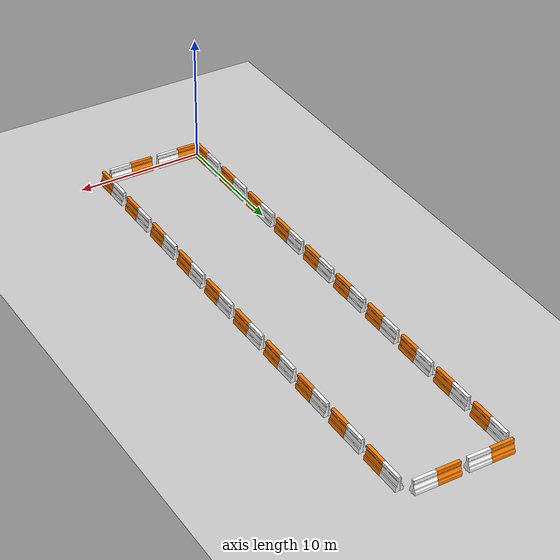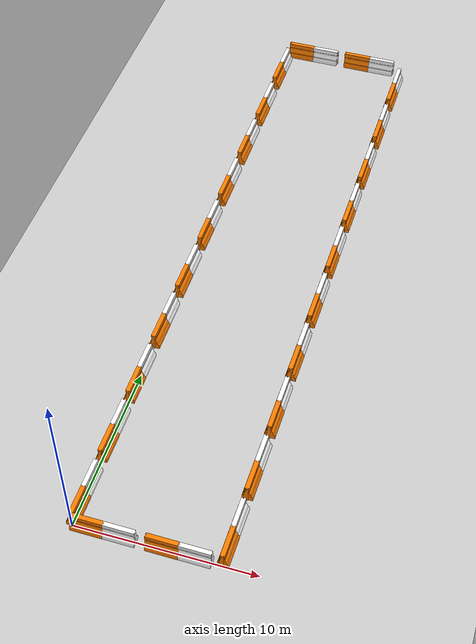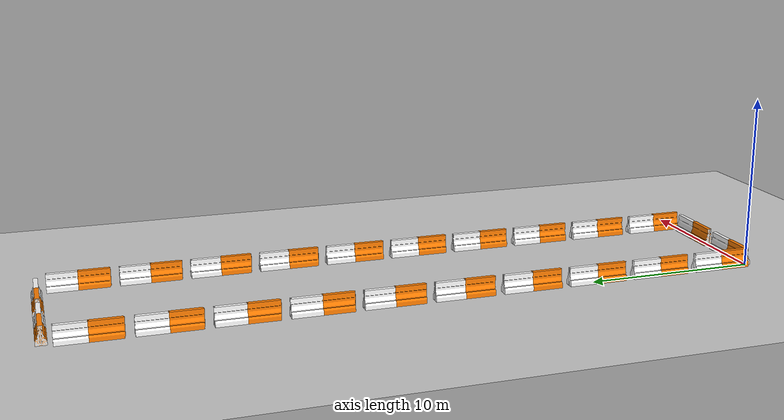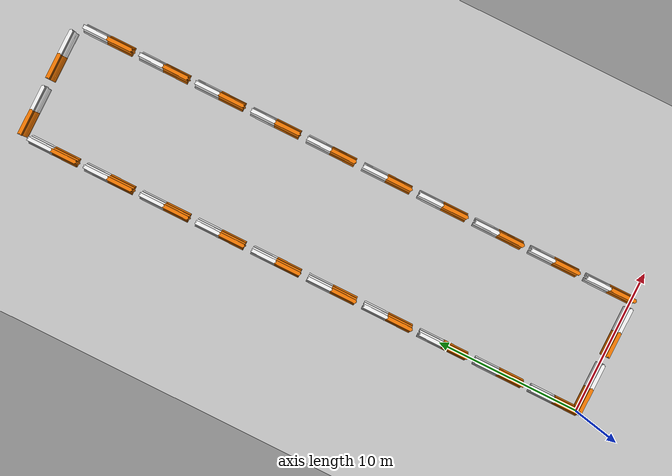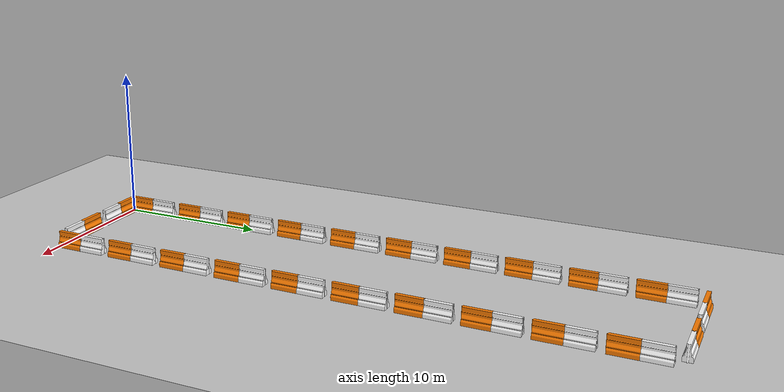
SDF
<sdf version="1.7">
 <world name="default">
  <model name="ground_plane">
   <static>1</static>
   <link name="link">
    <collision name="collision">
     <geometry><plane><normal>0 0 1</normal><size>100 100</size></plane></geometry>
     <surface>
      <contact><collide_bitmask>65535</collide_bitmask></contact>
      <friction><ode><mu>100</mu><mu2>50</mu2></ode></friction>
     </surface>
    </collision>
    <visual name="visual">
     <cast_shadows>0</cast_shadows>
     <geometry><plane><normal>0 0 1</normal><size>100 100</size></plane></geometry>
     <material>
      <script><uri>file://media/materials/scripts/gazebo.material</uri><name>Gazebo/Grey</name></script>
     </material>
    </visual>
   </link>
  </model>
  <model name="object_0">
   <static>1</static>
   <link name="link">
    <visual name="visual">
     <geometry>
      <mesh><uri>model://drc_practice_orange_jersey_barrier/meshes/jersey_barrier.dae</uri></mesh>
     </geometry>
    </visual>
    <collision name="collision">
     <geometry>
      <mesh><uri>model://drc_practice_orange_jersey_barrier/meshes/jersey_barrier.dae</uri></mesh>
     </geometry>
    </collision>
   </link>
   <pose>0 0.87 0 0 -0 0</pose>
  </model>
  <model name="object_1">
   <static>1</static>
   <link name="link">
    <visual name="visual">
     <geometry>
      <mesh><uri>model://drc_practice_white_jersey_barrier/meshes/jersey_barrier.dae</uri></mesh>
     </geometry>
    </visual>
    <collision name="collision">
     <geometry>
      <mesh><uri>model://drc_practice_white_jersey_barrier/meshes/jersey_barrier.dae</uri></mesh>
     </geometry>
    </collision>
   </link>
   <pose>0 2.61 0 0 -0 0</pose>
  </model>
  <model name="object_3">
   <static>1</static>
   <link name="link">
    <visual name="visual">
     <geometry>
      <mesh><uri>model://drc_practice_orange_jersey_barrier/meshes/jersey_barrier.dae</uri></mesh>
     </geometry>
    </visual>
    <collision name="collision">
     <geometry>
      <mesh><uri>model://drc_practice_orange_jersey_barrier/meshes/jersey_barrier.dae</uri></mesh>
     </geometry>
    </collision>
   </link>
   <pose>0 4.91 0 0 -0 0</pose>
  </model>
  <model name="object_4">
   <static>1</static>
   <link name="link">
    <visual name="visual">
     <geometry>
      <mesh><uri>model://drc_practice_white_jersey_barrier/meshes/jersey_barrier.dae</uri></mesh>
     </geometry>
    </visual>
    <collision name="collision">
     <geometry>
      <mesh><uri>model://drc_practice_white_jersey_barrier/meshes/jersey_barrier.dae</uri></mesh>
     </geometry>
    </collision>
   </link>
   <pose>0 6.65 0 0 -0 0</pose>
  </model>
  <model name="object_6">
   <static>1</static>
   <link name="link">
    <visual name="visual">
     <geometry>
      <mesh><uri>model://drc_practice_orange_jersey_barrier/meshes/jersey_barrier.dae</uri></mesh>
     </geometry>
    </visual>
    <collision name="collision">
     <geometry>
      <mesh><uri>model://drc_practice_orange_jersey_barrier/meshes/jersey_barrier.dae</uri></mesh>
     </geometry>
    </collision>
   </link>
   <pose>0 8.95 0 0 -0 0</pose>
  </model>
  <model name="object_7">
   <static>1</static>
   <link name="link">
    <visual name="visual">
     <geometry>
      <mesh><uri>model://drc_practice_white_jersey_barrier/meshes/jersey_barrier.dae</uri></mesh>
     </geometry>
    </visual>
    <collision name="collision">
     <geometry>
      <mesh><uri>model://drc_practice_white_jersey_barrier/meshes/jersey_barrier.dae</uri></mesh>
     </geometry>
    </collision>
   </link>
   <pose>0 10.69 0 0 -0 0</pose>
  </model>
  <model name="object_9">
   <static>1</static>
   <link name="link">
    <visual name="visual">
     <geometry>
      <mesh><uri>model://drc_practice_orange_jersey_barrier/meshes/jersey_barrier.dae</uri></mesh>
     </geometry>
    </visual>
    <collision name="collision">
     <geometry>
      <mesh><uri>model://drc_practice_orange_jersey_barrier/meshes/jersey_barrier.dae</uri></mesh>
     </geometry>
    </collision>
   </link>
   <pose>0 12.99 0 0 -0 0</pose>
  </model>
  <model name="object_10">
   <static>1</static>
   <link name="link">
    <visual name="visual">
     <geometry>
      <mesh><uri>model://drc_practice_white_jersey_barrier/meshes/jersey_barrier.dae</uri></mesh>
     </geometry>
    </visual>
    <collision name="collision">
     <geometry>
      <mesh><uri>model://drc_practice_white_jersey_barrier/meshes/jersey_barrier.dae</uri></mesh>
     </geometry>
    </collision>
   </link>
   <pose>0 14.73 0 0 -0 0</pose>
  </model>
  <model name="object_12">
   <static>1</static>
   <link name="link">
    <visual name="visual">
     <geometry>
      <mesh><uri>model://drc_practice_orange_jersey_barrier/meshes/jersey_barrier.dae</uri></mesh>
     </geometry>
    </visual>
    <collision name="collision">
     <geometry>
      <mesh><uri>model://drc_practice_orange_jersey_barrier/meshes/jersey_barrier.dae</uri></mesh>
     </geometry>
    </collision>
   </link>
   <pose>0 17.03 0 0 -0 0</pose>
  </model>
  <model name="object_13">
   <static>1</static>
   <link name="link">
    <visual name="visual">
     <geometry>
      <mesh><uri>model://drc_practice_white_jersey_barrier/meshes/jersey_barrier.dae</uri></mesh>
     </geometry>
    </visual>
    <collision name="collision">
     <geometry>
      <mesh><uri>model://drc_practice_white_jersey_barrier/meshes/jersey_barrier.dae</uri></mesh>
     </geometry>
    </collision>
   </link>
   <pose>0 18.77 0 0 -0 0</pose>
  </model>
  <model name="object_15">
   <static>1</static>
   <link name="link">
    <visual name="visual">
     <geometry>
      <mesh><uri>model://drc_practice_orange_jersey_barrier/meshes/jersey_barrier.dae</uri></mesh>
     </geometry>
    </visual>
    <collision name="collision">
     <geometry>
      <mesh><uri>model://drc_practice_orange_jersey_barrier/meshes/jersey_barrier.dae</uri></mesh>
     </geometry>
    </collision>
   </link>
   <pose>0 21.07 0 0 -0 0</pose>
  </model>
  <model name="object_16">
   <static>1</static>
   <link name="link">
    <visual name="visual">
     <geometry>
      <mesh><uri>model://drc_practice_white_jersey_barrier/meshes/jersey_barrier.dae</uri></mesh>
     </geometry>
    </visual>
    <collision name="collision">
     <geometry>
      <mesh><uri>model://drc_practice_white_jersey_barrier/meshes/jersey_barrier.dae</uri></mesh>
     </geometry>
    </collision>
   </link>
   <pose>0 22.81 0 0 -0 0</pose>
  </model>
  <model name="object_18">
   <static>1</static>
   <link name="link">
    <visual name="visual">
     <geometry>
      <mesh><uri>model://drc_practice_orange_jersey_barrier/meshes/jersey_barrier.dae</uri></mesh>
     </geometry>
    </visual>
    <collision name="collision">
     <geometry>
      <mesh><uri>model://drc_practice_orange_jersey_barrier/meshes/jersey_barrier.dae</uri></mesh>
     </geometry>
    </collision>
   </link>
   <pose>0 25.11 0 0 -0 0</pose>
  </model>
  <model name="object_19">
   <static>1</static>
   <link name="link">
    <visual name="visual">
     <geometry>
      <mesh><uri>model://drc_practice_white_jersey_barrier/meshes/jersey_barrier.dae</uri></mesh>
     </geometry>
    </visual>
    <collision name="collision">
     <geometry>
      <mesh><uri>model://drc_practice_white_jersey_barrier/meshes/jersey_barrier.dae</uri></mesh>
     </geometry>
    </collision>
   </link>
   <pose>0 26.85 0 0 -0 0</pose>
  </model>
  <model name="object_21">
   <static>1</static>
   <link name="link">
    <visual name="visual">
     <geometry>
      <mesh><uri>model://drc_practice_orange_jersey_barrier/meshes/jersey_barrier.dae</uri></mesh>
     </geometry>
    </visual>
    <collision name="collision">
     <geometry>
      <mesh><uri>model://drc_practice_orange_jersey_barrier/meshes/jersey_barrier.dae</uri></mesh>
     </geometry>
    </collision>
   </link>
   <pose>0 29.15 0 0 -0 0</pose>
  </model>
  <model name="object_22">
   <static>1</static>
   <link name="link">
    <visual name="visual">
     <geometry>
      <mesh><uri>model://drc_practice_white_jersey_barrier/meshes/jersey_barrier.dae</uri></mesh>
     </geometry>
    </visual>
    <collision name="collision">
     <geometry>
      <mesh><uri>model://drc_practice_white_jersey_barrier/meshes/jersey_barrier.dae</uri></mesh>
     </geometry>
    </collision>
   </link>
   <pose>0 30.89 0 0 -0 0</pose>
  </model>
  <model name="object_24">
   <static>1</static>
   <link name="link">
    <visual name="visual">
     <geometry>
      <mesh><uri>model://drc_practice_orange_jersey_barrier/meshes/jersey_barrier.dae</uri></mesh>
     </geometry>
    </visual>
    <collision name="collision">
     <geometry>
      <mesh><uri>model://drc_practice_orange_jersey_barrier/meshes/jersey_barrier.dae</uri></mesh>
     </geometry>
    </collision>
   </link>
   <pose>0 33.19 0 0 -0 0</pose>
  </model>
  <model name="object_25">
   <static>1</static>
   <link name="link">
    <visual name="visual">
     <geometry>
      <mesh><uri>model://drc_practice_white_jersey_barrier/meshes/jersey_barrier.dae</uri></mesh>
     </geometry>
    </visual>
    <collision name="collision">
     <geometry>
      <mesh><uri>model://drc_practice_white_jersey_barrier/meshes/jersey_barrier.dae</uri></mesh>
     </geometry>
    </collision>
   </link>
   <pose>0 34.93 0 0 -0 0</pose>
  </model>
  <model name="object_27">
   <static>1</static>
   <link name="link">
    <visual name="visual">
     <geometry>
      <mesh><uri>model://drc_practice_orange_jersey_barrier/meshes/jersey_barrier.dae</uri></mesh>
     </geometry>
    </visual>
    <collision name="collision">
     <geometry>
      <mesh><uri>model://drc_practice_orange_jersey_barrier/meshes/jersey_barrier.dae</uri></mesh>
     </geometry>
    </collision>
   </link>
   <pose>0 37.23 0 0 -0 0</pose>
  </model>
  <model name="object_28">
   <static>1</static>
   <link name="link">
    <visual name="visual">
     <geometry>
      <mesh><uri>model://drc_practice_white_jersey_barrier/meshes/jersey_barrier.dae</uri></mesh>
     </geometry>
    </visual>
    <collision name="collision">
     <geometry>
      <mesh><uri>model://drc_practice_white_jersey_barrier/meshes/jersey_barrier.dae</uri></mesh>
     </geometry>
    </collision>
   </link>
   <pose>0 38.97 0 0 -0 0</pose>
  </model>
  <model name="object_30">
   <static>1</static>
   <link name="link">
    <visual name="visual">
     <geometry>
      <mesh><uri>model://drc_practice_orange_jersey_barrier/meshes/jersey_barrier.dae</uri></mesh>
     </geometry>
    </visual>
    <collision name="collision">
     <geometry>
      <mesh><uri>model://drc_practice_orange_jersey_barrier/meshes/jersey_barrier.dae</uri></mesh>
     </geometry>
    </collision>
   </link>
   <pose>8.08 0.87 0 0 -0 0</pose>
  </model>
  <model name="object_31">
   <static>1</static>
   <link name="link">
    <visual name="visual">
     <geometry>
      <mesh><uri>model://drc_practice_white_jersey_barrier/meshes/jersey_barrier.dae</uri></mesh>
     </geometry>
    </visual>
    <collision name="collision">
     <geometry>
      <mesh><uri>model://drc_practice_white_jersey_barrier/meshes/jersey_barrier.dae</uri></mesh>
     </geometry>
    </collision>
   </link>
   <pose>8.08 2.61 0 0 -0 0</pose>
  </model>
  <model name="object_33">
   <static>1</static>
   <link name="link">
    <visual name="visual">
     <geometry>
      <mesh><uri>model://drc_practice_orange_jersey_barrier/meshes/jersey_barrier.dae</uri></mesh>
     </geometry>
    </visual>
    <collision name="collision">
     <geometry>
      <mesh><uri>model://drc_practice_orange_jersey_barrier/meshes/jersey_barrier.dae</uri></mesh>
     </geometry>
    </collision>
   </link>
   <pose>8.08 4.91 0 0 -0 0</pose>
  </model>
  <model name="object_34">
   <static>1</static>
   <link name="link">
    <visual name="visual">
     <geometry>
      <mesh><uri>model://drc_practice_white_jersey_barrier/meshes/jersey_barrier.dae</uri></mesh>
     </geometry>
    </visual>
    <collision name="collision">
     <geometry>
      <mesh><uri>model://drc_practice_white_jersey_barrier/meshes/jersey_barrier.dae</uri></mesh>
     </geometry>
    </collision>
   </link>
   <pose>8.08 6.65 0 0 -0 0</pose>
  </model>
  <model name="object_36">
   <static>1</static>
   <link name="link">
    <visual name="visual">
     <geometry>
      <mesh><uri>model://drc_practice_orange_jersey_barrier/meshes/jersey_barrier.dae</uri></mesh>
     </geometry>
    </visual>
    <collision name="collision">
     <geometry>
      <mesh><uri>model://drc_practice_orange_jersey_barrier/meshes/jersey_barrier.dae</uri></mesh>
     </geometry>
    </collision>
   </link>
   <pose>8.08 8.95 0 0 -0 0</pose>
  </model>
  <model name="object_37">
   <static>1</static>
   <link name="link">
    <visual name="visual">
     <geometry>
      <mesh><uri>model://drc_practice_white_jersey_barrier/meshes/jersey_barrier.dae</uri></mesh>
     </geometry>
    </visual>
    <collision name="collision">
     <geometry>
      <mesh><uri>model://drc_practice_white_jersey_barrier/meshes/jersey_barrier.dae</uri></mesh>
     </geometry>
    </collision>
   </link>
   <pose>8.08 10.69 0 0 -0 0</pose>
  </model>
  <model name="object_39">
   <static>1</static>
   <link name="link">
    <visual name="visual">
     <geometry>
      <mesh><uri>model://drc_practice_orange_jersey_barrier/meshes/jersey_barrier.dae</uri></mesh>
     </geometry>
    </visual>
    <collision name="collision">
     <geometry>
      <mesh><uri>model://drc_practice_orange_jersey_barrier/meshes/jersey_barrier.dae</uri></mesh>
     </geometry>
    </collision>
   </link>
   <pose>8.08 12.99 0 0 -0 0</pose>
  </model>
  <model name="object_40">
   <static>1</static>
   <link name="link">
    <visual name="visual">
     <geometry>
      <mesh><uri>model://drc_practice_white_jersey_barrier/meshes/jersey_barrier.dae</uri></mesh>
     </geometry>
    </visual>
    <collision name="collision">
     <geometry>
      <mesh><uri>model://drc_practice_white_jersey_barrier/meshes/jersey_barrier.dae</uri></mesh>
     </geometry>
    </collision>
   </link>
   <pose>8.08 14.73 0 0 -0 0</pose>
  </model>
  <model name="object_42">
   <static>1</static>
   <link name="link">
    <visual name="visual">
     <geometry>
      <mesh><uri>model://drc_practice_orange_jersey_barrier/meshes/jersey_barrier.dae</uri></mesh>
     </geometry>
    </visual>
    <collision name="collision">
     <geometry>
      <mesh><uri>model://drc_practice_orange_jersey_barrier/meshes/jersey_barrier.dae</uri></mesh>
     </geometry>
    </collision>
   </link>
   <pose>8.08 17.03 0 0 -0 0</pose>
  </model>
  <model name="object_43">
   <static>1</static>
   <link name="link">
    <visual name="visual">
     <geometry>
      <mesh><uri>model://drc_practice_white_jersey_barrier/meshes/jersey_barrier.dae</uri></mesh>
     </geometry>
    </visual>
    <collision name="collision">
     <geometry>
      <mesh><uri>model://drc_practice_white_jersey_barrier/meshes/jersey_barrier.dae</uri></mesh>
     </geometry>
    </collision>
   </link>
   <pose>8.08 18.77 0 0 -0 0</pose>
  </model>
  <model name="object_45">
   <static>1</static>
   <link name="link">
    <visual name="visual">
     <geometry>
      <mesh><uri>model://drc_practice_orange_jersey_barrier/meshes/jersey_barrier.dae</uri></mesh>
     </geometry>
    </visual>
    <collision name="collision">
     <geometry>
      <mesh><uri>model://drc_practice_orange_jersey_barrier/meshes/jersey_barrier.dae</uri></mesh>
     </geometry>
    </collision>
   </link>
   <pose>8.08 21.07 0 0 -0 0</pose>
  </model>
  <model name="object_46">
   <static>1</static>
   <link name="link">
    <visual name="visual">
     <geometry>
      <mesh><uri>model://drc_practice_white_jersey_barrier/meshes/jersey_barrier.dae</uri></mesh>
     </geometry>
    </visual>
    <collision name="collision">
     <geometry>
      <mesh><uri>model://drc_practice_white_jersey_barrier/meshes/jersey_barrier.dae</uri></mesh>
     </geometry>
    </collision>
   </link>
   <pose>8.08 22.81 0 0 -0 0</pose>
  </model>
  <model name="object_48">
   <static>1</static>
   <link name="link">
    <visual name="visual">
     <geometry>
      <mesh><uri>model://drc_practice_orange_jersey_barrier/meshes/jersey_barrier.dae</uri></mesh>
     </geometry>
    </visual>
    <collision name="collision">
     <geometry>
      <mesh><uri>model://drc_practice_orange_jersey_barrier/meshes/jersey_barrier.dae</uri></mesh>
     </geometry>
    </collision>
   </link>
   <pose>8.08 25.11 0 0 -0 0</pose>
  </model>
  <model name="object_49">
   <static>1</static>
   <link name="link">
    <visual name="visual">
     <geometry>
      <mesh><uri>model://drc_practice_white_jersey_barrier/meshes/jersey_barrier.dae</uri></mesh>
     </geometry>
    </visual>
    <collision name="collision">
     <geometry>
      <mesh><uri>model://drc_practice_white_jersey_barrier/meshes/jersey_barrier.dae</uri></mesh>
     </geometry>
    </collision>
   </link>
   <pose>8.08 26.85 0 0 -0 0</pose>
  </model>
  <model name="object_51">
   <static>1</static>
   <link name="link">
    <visual name="visual">
     <geometry>
      <mesh><uri>model://drc_practice_orange_jersey_barrier/meshes/jersey_barrier.dae</uri></mesh>
     </geometry>
    </visual>
    <collision name="collision">
     <geometry>
      <mesh><uri>model://drc_practice_orange_jersey_barrier/meshes/jersey_barrier.dae</uri></mesh>
     </geometry>
    </collision>
   </link>
   <pose>8.08 29.15 0 0 -0 0</pose>
  </model>
  <model name="object_52">
   <static>1</static>
   <link name="link">
    <visual name="visual">
     <geometry>
      <mesh><uri>model://drc_practice_white_jersey_barrier/meshes/jersey_barrier.dae</uri></mesh>
     </geometry>
    </visual>
    <collision name="collision">
     <geometry>
      <mesh><uri>model://drc_practice_white_jersey_barrier/meshes/jersey_barrier.dae</uri></mesh>
     </geometry>
    </collision>
   </link>
   <pose>8.08 30.89 0 0 -0 0</pose>
  </model>
  <model name="object_54">
   <static>1</static>
   <link name="link">
    <visual name="visual">
     <geometry>
      <mesh><uri>model://drc_practice_orange_jersey_barrier/meshes/jersey_barrier.dae</uri></mesh>
     </geometry>
    </visual>
    <collision name="collision">
     <geometry>
      <mesh><uri>model://drc_practice_orange_jersey_barrier/meshes/jersey_barrier.dae</uri></mesh>
     </geometry>
    </collision>
   </link>
   <pose>8.08 33.19 0 0 -0 0</pose>
  </model>
  <model name="object_55">
   <static>1</static>
   <link name="link">
    <visual name="visual">
     <geometry>
      <mesh><uri>model://drc_practice_white_jersey_barrier/meshes/jersey_barrier.dae</uri></mesh>
     </geometry>
    </visual>
    <collision name="collision">
     <geometry>
      <mesh><uri>model://drc_practice_white_jersey_barrier/meshes/jersey_barrier.dae</uri></mesh>
     </geometry>
    </collision>
   </link>
   <pose>8.08 34.93 0 0 -0 0</pose>
  </model>
  <model name="object_57">
   <static>1</static>
   <link name="link">
    <visual name="visual">
     <geometry>
      <mesh><uri>model://drc_practice_orange_jersey_barrier/meshes/jersey_barrier.dae</uri></mesh>
     </geometry>
    </visual>
    <collision name="collision">
     <geometry>
      <mesh><uri>model://drc_practice_orange_jersey_barrier/meshes/jersey_barrier.dae</uri></mesh>
     </geometry>
    </collision>
   </link>
   <pose>8.08 37.23 0 0 -0 0</pose>
  </model>
  <model name="object_58">
   <static>1</static>
   <link name="link">
    <visual name="visual">
     <geometry>
      <mesh><uri>model://drc_practice_white_jersey_barrier/meshes/jersey_barrier.dae</uri></mesh>
     </geometry>
    </visual>
    <collision name="collision">
     <geometry>
      <mesh><uri>model://drc_practice_white_jersey_barrier/meshes/jersey_barrier.dae</uri></mesh>
     </geometry>
    </collision>
   </link>
   <pose>8.08 38.97 0 0 -0 0</pose>
  </model>
  <model name="object_60">
   <static>1</static>
   <link name="link">
    <visual name="visual">
     <geometry>
      <mesh><uri>model://drc_practice_orange_jersey_barrier/meshes/jersey_barrier.dae</uri></mesh>
     </geometry>
    </visual>
    <collision name="collision">
     <geometry>
      <mesh><uri>model://drc_practice_orange_jersey_barrier/meshes/jersey_barrier.dae</uri></mesh>
     </geometry>
    </collision>
   </link>
   <pose>0.87 0 0 0 -0 1.5708</pose>
  </model>
  <model name="object_61">
   <static>1</static>
   <link name="link">
    <visual name="visual">
     <geometry>
      <mesh><uri>model://drc_practice_white_jersey_barrier/meshes/jersey_barrier.dae</uri></mesh>
     </geometry>
    </visual>
    <collision name="collision">
     <geometry>
      <mesh><uri>model://drc_practice_white_jersey_barrier/meshes/jersey_barrier.dae</uri></mesh>
     </geometry>
    </collision>
   </link>
   <pose>2.61 0 0 0 -0 1.5708</pose>
  </model>
  <model name="object_63">
   <static>1</static>
   <link name="link">
    <visual name="visual">
     <geometry>
      <mesh><uri>model://drc_practice_orange_jersey_barrier/meshes/jersey_barrier.dae</uri></mesh>
     </geometry>
    </visual>
    <collision name="collision">
     <geometry>
      <mesh><uri>model://drc_practice_orange_jersey_barrier/meshes/jersey_barrier.dae</uri></mesh>
     </geometry>
    </collision>
   </link>
   <pose>4.91 0 0 0 -0 1.5708</pose>
  </model>
  <model name="object_64">
   <static>1</static>
   <link name="link">
    <visual name="visual">
     <geometry>
      <mesh><uri>model://drc_practice_white_jersey_barrier/meshes/jersey_barrier.dae</uri></mesh>
     </geometry>
    </visual>
    <collision name="collision">
     <geometry>
      <mesh><uri>model://drc_practice_white_jersey_barrier/meshes/jersey_barrier.dae</uri></mesh>
     </geometry>
    </collision>
   </link>
   <pose>6.65 0 0 0 -0 1.5708</pose>
  </model>
  <model name="object_66">
   <static>1</static>
   <link name="link">
    <visual name="visual">
     <geometry>
      <mesh><uri>model://drc_practice_orange_jersey_barrier/meshes/jersey_barrier.dae</uri></mesh>
     </geometry>
    </visual>
    <collision name="collision">
     <geometry>
      <mesh><uri>model://drc_practice_orange_jersey_barrier/meshes/jersey_barrier.dae</uri></mesh>
     </geometry>
    </collision>
   </link>
   <pose>0.87 40.4 0 0 -0 1.5708</pose>
  </model>
  <model name="object_67">
   <static>1</static>
   <link name="link">
    <visual name="visual">
     <geometry>
      <mesh><uri>model://drc_practice_white_jersey_barrier/meshes/jersey_barrier.dae</uri></mesh>
     </geometry>
    </visual>
    <collision name="collision">
     <geometry>
      <mesh><uri>model://drc_practice_white_jersey_barrier/meshes/jersey_barrier.dae</uri></mesh>
     </geometry>
    </collision>
   </link>
   <pose>2.61 40.4 0 0 -0 1.5708</pose>
  </model>
  <model name="object_69">
   <static>1</static>
   <link name="link">
    <visual name="visual">
     <geometry>
      <mesh><uri>model://drc_practice_orange_jersey_barrier/meshes/jersey_barrier.dae</uri></mesh>
     </geometry>
    </visual>
    <collision name="collision">
     <geometry>
      <mesh><uri>model://drc_practice_orange_jersey_barrier/meshes/jersey_barrier.dae</uri></mesh>
     </geometry>
    </collision>
   </link>
   <pose>4.91 40.4 0 0 -0 1.5708</pose>
  </model>
  <model name="object_70">
   <static>1</static>
   <link name="link">
    <visual name="visual">
     <geometry>
      <mesh><uri>model://drc_practice_white_jersey_barrier/meshes/jersey_barrier.dae</uri></mesh>
     </geometry>
    </visual>
    <collision name="collision">
     <geometry>
      <mesh><uri>model://drc_practice_white_jersey_barrier/meshes/jersey_barrier.dae</uri></mesh>
     </geometry>
    </collision>
   </link>
   <pose>6.65 40.4 0 0 -0 1.5708</pose>
  </model>
 </world>
</sdf>
